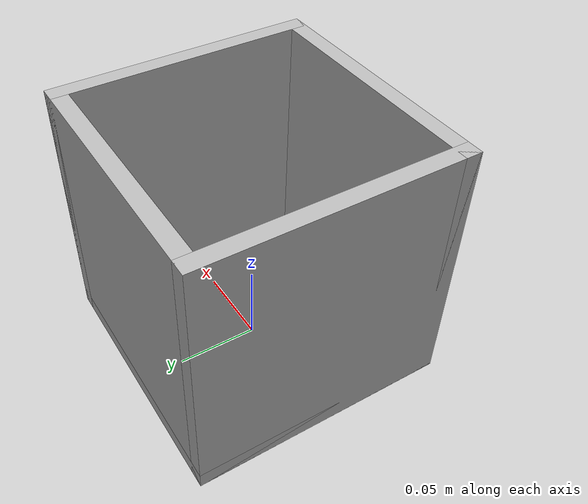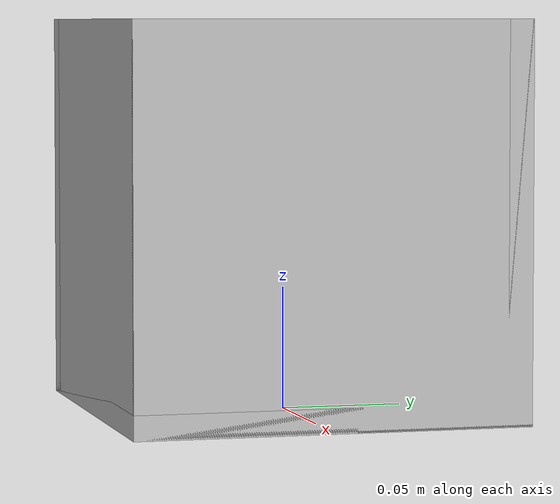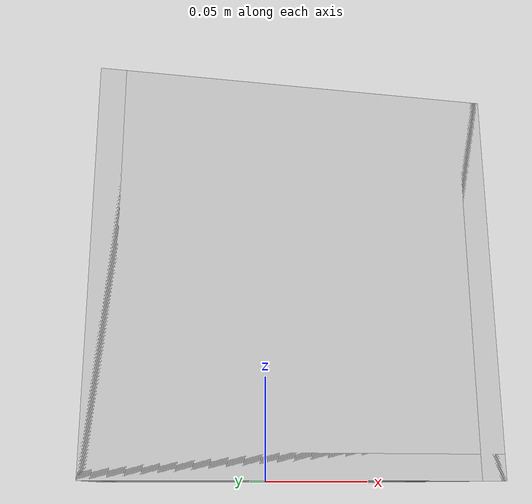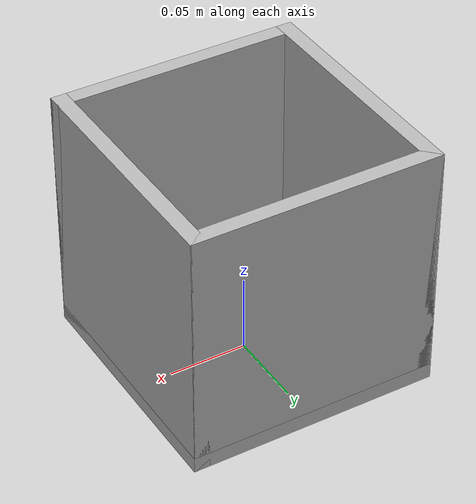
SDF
<?xml version='1.0'?>
<sdf version='1.7'>
  <model name='jn_crate'>
    <link name="crate_bottom">
      <pose>0 0 0.005 0 0 0</pose>
      <visual name="bottom_visual">
        <geometry>
          <box>
            <size>0.16 0.16 0.01</size>
          </box>
        </geometry>
      </visual>
      <collision name="bottom_collision">
        <geometry>
          <box>
            <size>0.16 0.16 0.01</size>
          </box>
        </geometry>
      </collision>
      <inertial>
        <mass>1</mass>
        <inertia>
          <ixx>0.01</ixx>
          <ixy>0</ixy>
          <ixz>0</ixz>
          <iyy>0.01</iyy>
          <iyz>0</iyz>
          <izz>0.01</izz>
        </inertia>
      </inertial>
    </link>

    <link name="crate_wall_1">
      <pose>0.075 0 0.08 0 0 0</pose>
      <visual name="wall1_visual">
        <geometry>
          <box>
            <size>0.01 0.16 0.16</size>
          </box>
        </geometry>
      </visual>
      <collision name="wall1_collision">
        <geometry>
          <box>
            <size>0.01 0.16 0.16</size>
          </box>
        </geometry>
      </collision>
      <inertial>
        <mass>1</mass>
        <inertia>
          <ixx>0.01</ixx>
          <ixy>0</ixy>
          <ixz>0</ixz>
          <iyy>0.01</iyy>
          <iyz>0</iyz>
          <izz>0.01</izz>
        </inertia>
      </inertial>
    </link>

    <link name="crate_wall_2">
      <pose>-0.075 0 0.08 0 0 0</pose>
      <visual name="wall2_visual">
        <geometry>
          <box>
            <size>0.01 0.16 0.16</size>
          </box>
        </geometry>
      </visual>
      <collision name="wall2_collision">
        <geometry>
          <box>
            <size>0.01 0.16 0.16</size>
          </box>
        </geometry>
      </collision>
      <inertial>
        <mass>1</mass>
        <inertia>
          <ixx>0.01</ixx>
          <ixy>0</ixy>
          <ixz>0</ixz>
          <iyy>0.01</iyy>
          <iyz>0</iyz>
          <izz>0.01</izz>
        </inertia>
      </inertial>
    </link>

    <link name="crate_wall_3">
      <pose>0 0.075 0.08 0 0 0</pose>
      <visual name="wall3_visual">
        <geometry>
          <box>
            <size>0.16 0.01 0.16</size>
          </box>
        </geometry>
      </visual>
      <collision name="wall3_collision">
        <geometry>
          <box>
            <size>0.16 0.01 0.16</size>
          </box>
        </geometry>
      </collision>
      <inertial>
        <mass>1</mass>
        <inertia>
          <ixx>0.01</ixx>
          <ixy>0</ixy>
          <ixz>0</ixz>
          <iyy>0.01</iyy>
          <iyz>0</iyz>
          <izz>0.01</izz>
        </inertia>
      </inertial>
    </link>

    <link name="crate_wall_4">
      <pose>0 -0.075 0.08 0 0 0</pose>
      <visual name="wall4_visual">
        <geometry>
          <box>
            <size>0.16 0.01 0.16</size>
          </box>
        </geometry>
      </visual>
      <collision name="wall4_collision">
        <geometry>
          <box>
            <size>0.16 0.01 0.16</size>
          </box>
        </geometry>
      </collision>
      <inertial>
        <mass>1</mass>
        <inertia>
          <ixx>0.01</ixx>
          <ixy>0</ixy>
          <ixz>0</ixz>
          <iyy>0.01</iyy>
          <iyz>0</iyz>
          <izz>0.01</izz>
        </inertia>
      </inertial>
    </link>

    <joint name='wall_joint_1' type='fixed'>
      <parent>crate_bottom</parent>
      <child>crate_wall_1</child>
    </joint>

    <joint name='wall_joint_2' type='fixed'>
      <parent>crate_bottom</parent>
      <child>crate_wall_2</child>
    </joint>

    <joint name='wall_joint_3' type='fixed'>
      <parent>crate_bottom</parent>
      <child>crate_wall_3</child>
    </joint>

    <joint name='wall_joint_4' type='fixed'>
      <parent>crate_bottom</parent>
      <child>crate_wall_4</child>
    </joint>

    <static>false</static>
    <allow_auto_disable>true</allow_auto_disable>
  </model>
</sdf>
